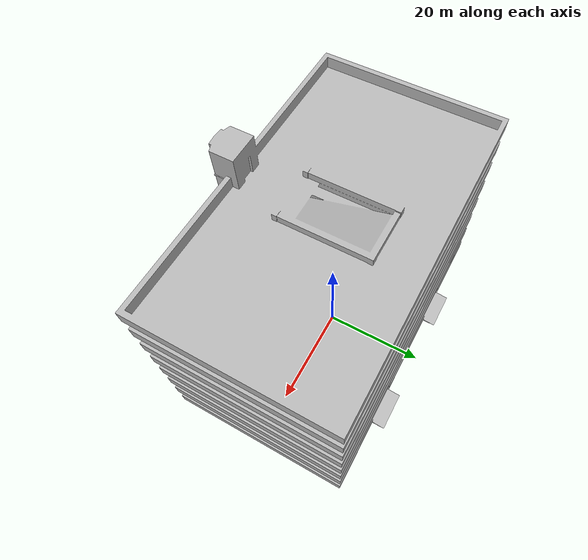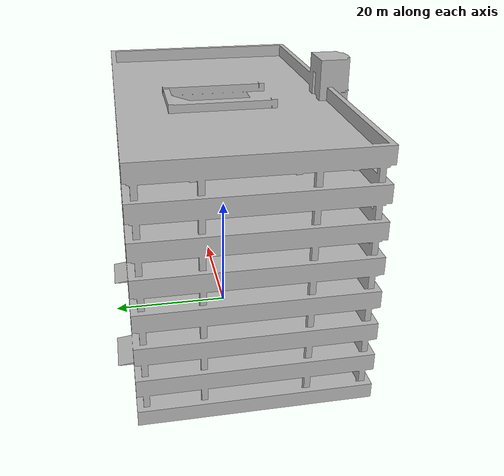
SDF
<sdf version="1.7">
 <world name="default">
  <light name="sun" type="directional">
   <pose>0 0 10 0 -0 0</pose>
   <diffuse>0.8 0.8 0.8 1</diffuse>
   <specular>0.2 0.2 0.2 1</specular>
   <attenuation>
    <range>1000</range>
    <constant>0.9</constant>
    <linear>0.01</linear>
    <quadratic>0.001</quadratic>
   </attenuation>
   <direction>-0.5 0.1 -0.9</direction>
   <spot><inner_angle>0</inner_angle><outer_angle>0</outer_angle><falloff>0</falloff></spot>
  </light>
  <gravity>0 0 -9.8</gravity>
  <magnetic_field>6e-06 2.3e-05 -4.2e-05</magnetic_field>
  <atmosphere type="adiabatic"/>
  <physics type="ode">
   <max_step_size>0.001</max_step_size>
   <real_time_factor>1</real_time_factor>
   <real_time_update_rate>1000</real_time_update_rate>
  </physics>
  <scene><ambient>0.4 0.4 0.4 1</ambient><background>0.7 0.7 0.7 1</background><shadows>1</shadows></scene>
  <spherical_coordinates>
   <surface_model>EARTH_WGS84</surface_model>
   <latitude_deg>0</latitude_deg>
   <longitude_deg>0</longitude_deg>
   <elevation>0</elevation>
   <heading_deg>0</heading_deg>
  </spherical_coordinates>
  <model name="parking_garage">
   <static>1</static>
   <link name="link">
    <collision name="collision">
     <geometry><mesh><uri>model://parking_garage/meshes/parking_garage.dae</uri></mesh></geometry>
    </collision>
    <visual name="visual">
     <geometry><mesh><uri>model://parking_garage/meshes/parking_garage.dae</uri></mesh></geometry>
    </visual>
   </link>
   <pose>0.005254 -0.014404 0 0 -0 0</pose>
  </model>
  <light name="user_point_light_0" type="point">
   <pose>747.125 812.975 1 0 -0 0</pose>
   <diffuse>0.5 0.5 0.5 1</diffuse>
   <specular>0.1 0.1 0.1 1</specular>
   <attenuation>
    <range>20</range>
    <constant>0.5</constant>
    <linear>0.01</linear>
    <quadratic>0.001</quadratic>
   </attenuation>
   <cast_shadows>0</cast_shadows>
   <direction>0 0 -1</direction>
  </light>
 </world>
</sdf>
